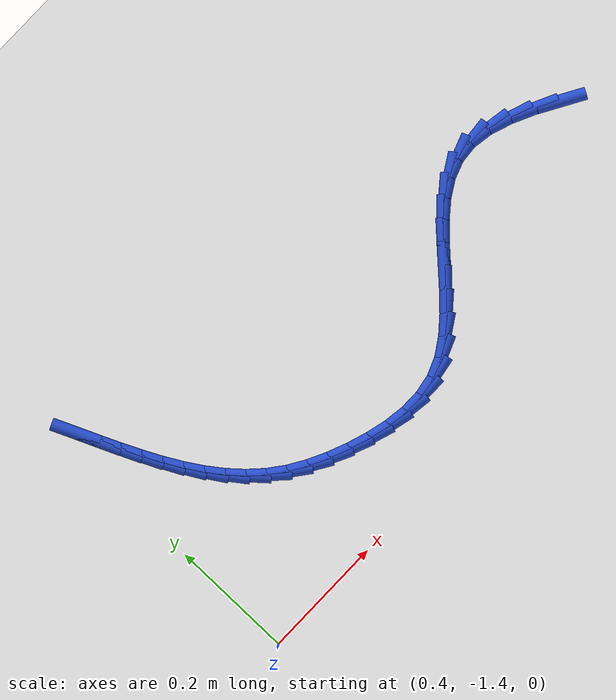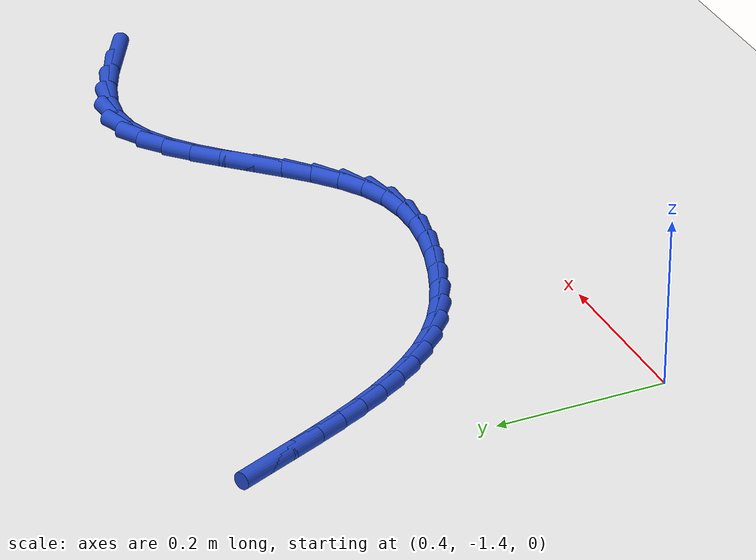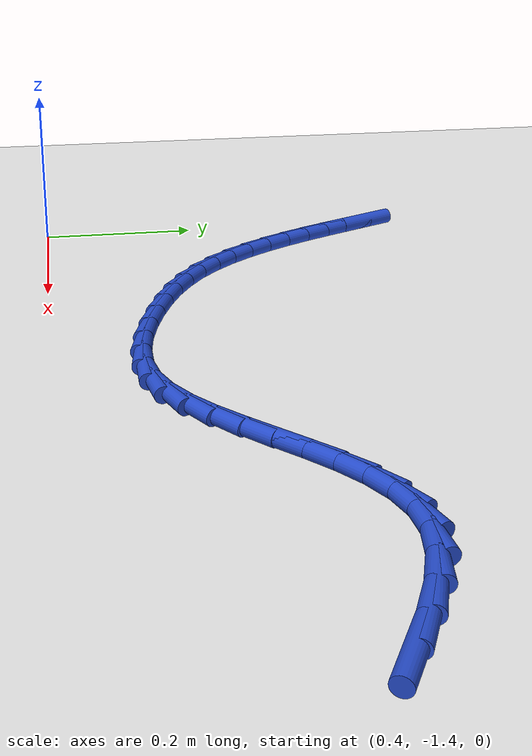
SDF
<sdf version="1.6">
 <world name="default">
  <model name="ground_plane">
   <static>1</static>
   <link name="link">
    <collision name="collision">
     <geometry><plane><normal>0 0 1</normal><size>100 100</size></plane></geometry>
     <surface><friction><ode><mu>100</mu><mu2>50</mu2></ode></friction></surface>
    </collision>
    <visual name="visual">
     <cast_shadows>0</cast_shadows>
     <geometry><plane><normal>0 0 1</normal><size>100 100</size></plane></geometry>
     <material>
      <script><uri>file://media/materials/scripts/gazebo.material</uri><name>Gazebo/WhiteGlow</name></script>
     </material>
    </visual>
   </link>
  </model>
  <model name="line">
   <link name="link_206">
    <pose>1.312610488485859 -1.1356522336562616 0.01 0 1.57 -0.5214419297256355</pose>
    <collision name="collision">
     <geometry><cylinder><radius>0.01</radius><length>0.08</length></cylinder></geometry>
    </collision>
    <visual name="visual">
     <material>
      <script><name>Gazebo/Blue</name><uri>file://media/materials/scripts/gazebo.material</uri></script>
     </material>
     <geometry><cylinder><radius>0.01</radius><length>0.08</length></cylinder></geometry>
    </visual>
   </link>
   <link name="link_207">
    <pose>1.2751437098567104 -1.1141283918461418 0.01 0 1.57 -0.44586204708426097</pose>
    <collision name="collision">
     <geometry><cylinder><radius>0.01</radius><length>0.08</length></cylinder></geometry>
    </collision>
    <visual name="visual">
     <material>
      <script><name>Gazebo/Blue</name><uri>file://media/materials/scripts/gazebo.material</uri></script>
     </material>
     <geometry><cylinder><radius>0.01</radius><length>0.08</length></cylinder></geometry>
    </visual>
   </link>
   <link name="link_208">
    <pose>1.2380448453261002 -1.0963965552823312 0.01 0 1.57 -0.3299150513413945</pose>
    <collision name="collision">
     <geometry><cylinder><radius>0.01</radius><length>0.08</length></cylinder></geometry>
    </collision>
    <visual name="visual">
     <material>
      <script><name>Gazebo/Blue</name><uri>file://media/materials/scripts/gazebo.material</uri></script>
     </material>
     <geometry><cylinder><radius>0.01</radius><length>0.08</length></cylinder></geometry>
    </visual>
   </link>
   <link name="link_209">
    <pose>1.2020038227370073 -1.0840550295326077 0.01 0 1.57 -0.15484270157330082</pose>
    <collision name="collision">
     <geometry><cylinder><radius>0.01</radius><length>0.08</length></cylinder></geometry>
    </collision>
    <visual name="visual">
     <material>
      <script><name>Gazebo/Blue</name><uri>file://media/materials/scripts/gazebo.material</uri></script>
     </material>
     <geometry><cylinder><radius>0.01</radius><length>0.08</length></cylinder></geometry>
    </visual>
   </link>
   <link name="link_210">
    <pose>1.1677105699324124 -1.0787021201647498 0.01 0 1.57 0.09338912920556194</pose>
    <collision name="collision">
     <geometry><cylinder><radius>0.01</radius><length>0.08</length></cylinder></geometry>
    </collision>
    <visual name="visual">
     <material>
      <script><name>Gazebo/Blue</name><uri>file://media/materials/scripts/gazebo.material</uri></script>
     </material>
     <geometry><cylinder><radius>0.01</radius><length>0.08</length></cylinder></geometry>
    </visual>
   </link>
   <link name="link_211">
    <pose>1.1357655340295618 -1.0816941426492908 0.01 0 1.57 0.3473778575573275</pose>
    <collision name="collision">
     <geometry><cylinder><radius>0.01</radius><length>0.08</length></cylinder></geometry>
    </collision>
    <visual name="visual">
     <material>
      <script><name>Gazebo/Blue</name><uri>file://media/materials/scripts/gazebo.material</uri></script>
     </material>
     <geometry><cylinder><radius>0.01</radius><length>0.08</length></cylinder></geometry>
    </visual>
   </link>
   <link name="link_212">
    <pose>1.1060533980286698 -1.0924517125966162 0.01 0 1.57 0.5470305865638446</pose>
    <collision name="collision">
     <geometry><cylinder><radius>0.01</radius><length>0.08</length></cylinder></geometry>
    </collision>
    <visual name="visual">
     <material>
      <script><name>Gazebo/Blue</name><uri>file://media/materials/scripts/gazebo.material</uri></script>
     </material>
     <geometry><cylinder><radius>0.01</radius><length>0.08</length></cylinder></geometry>
    </visual>
   </link>
   <link name="link_213">
    <pose>1.0781154208133723 -1.1094666954903547 0.01 0 1.57 0.6851562039002745</pose>
    <collision name="collision">
     <geometry><cylinder><radius>0.01</radius><length>0.08</length></cylinder></geometry>
    </collision>
    <visual name="visual">
     <material>
      <script><name>Gazebo/Blue</name><uri>file://media/materials/scripts/gazebo.material</uri></script>
     </material>
     <geometry><cylinder><radius>0.01</radius><length>0.08</length></cylinder></geometry>
    </visual>
   </link>
   <link name="link_214">
    <pose>1.0514906931043055 -1.1312250932723271 0.01 0 1.57 0.7699429372936958</pose>
    <collision name="collision">
     <geometry><cylinder><radius>0.01</radius><length>0.08</length></cylinder></geometry>
    </collision>
    <visual name="visual">
     <material>
      <script><name>Gazebo/Blue</name><uri>file://media/materials/scripts/gazebo.material</uri></script>
     </material>
     <geometry><cylinder><radius>0.01</radius><length>0.08</length></cylinder></geometry>
    </visual>
   </link>
   <link name="link_215">
    <pose>1.0257183056221024 -1.1562129078843553 0.01 0 1.57 0.8107800093157533</pose>
    <collision name="collision">
     <geometry><cylinder><radius>0.01</radius><length>0.08</length></cylinder></geometry>
    </collision>
    <visual name="visual">
     <material>
      <script><name>Gazebo/Blue</name><uri>file://media/materials/scripts/gazebo.material</uri></script>
     </material>
     <geometry><cylinder><radius>0.01</radius><length>0.08</length></cylinder></geometry>
    </visual>
   </link>
   <link name="link_216">
    <pose>1.000337349087396 -1.1829161412682614 0.01 0 1.57 0.8131671052693851</pose>
    <collision name="collision">
     <geometry><cylinder><radius>0.01</radius><length>0.08</length></cylinder></geometry>
    </collision>
    <visual name="visual">
     <material>
      <script><name>Gazebo/Blue</name><uri>file://media/materials/scripts/gazebo.material</uri></script>
     </material>
     <geometry><cylinder><radius>0.01</radius><length>0.08</length></cylinder></geometry>
    </visual>
   </link>
   <link name="link_217">
    <pose>0.9748869142208222 -1.2098207953658655 0.01 0 1.57 0.7778605153669991</pose>
    <collision name="collision">
     <geometry><cylinder><radius>0.01</radius><length>0.08</length></cylinder></geometry>
    </collision>
    <visual name="visual">
     <material>
      <script><name>Gazebo/Blue</name><uri>file://media/materials/scripts/gazebo.material</uri></script>
     </material>
     <geometry><cylinder><radius>0.01</radius><length>0.08</length></cylinder></geometry>
    </visual>
   </link>
   <link name="link_218">
    <pose>0.9489060917430129 -1.2354128721189908 0.01 0 1.57 0.7010227826621915</pose>
    <collision name="collision">
     <geometry><cylinder><radius>0.01</radius><length>0.08</length></cylinder></geometry>
    </collision>
    <visual name="visual">
     <material>
      <script><name>Gazebo/Blue</name><uri>file://media/materials/scripts/gazebo.material</uri></script>
     </material>
     <geometry><cylinder><radius>0.01</radius><length>0.08</length></cylinder></geometry>
    </visual>
   </link>
   <link name="link_219">
    <pose>0.9219339723746041 -1.2581783734694572 0.01 0 1.57 0.5751157399584299</pose>
    <collision name="collision">
     <geometry><cylinder><radius>0.01</radius><length>0.08</length></cylinder></geometry>
    </collision>
    <visual name="visual">
     <material>
      <script><name>Gazebo/Blue</name><uri>file://media/materials/scripts/gazebo.material</uri></script>
     </material>
     <geometry><cylinder><radius>0.01</radius><length>0.08</length></cylinder></geometry>
    </visual>
   </link>
   <link name="link_220">
    <pose>0.8935096468362278 -1.2766033013590876 0.01 0 1.57 0.3929244178770238</pose>
    <collision name="collision">
     <geometry><cylinder><radius>0.01</radius><length>0.08</length></cylinder></geometry>
    </collision>
    <visual name="visual">
     <material>
      <script><name>Gazebo/Blue</name><uri>file://media/materials/scripts/gazebo.material</uri></script>
     </material>
     <geometry><cylinder><radius>0.01</radius><length>0.08</length></cylinder></geometry>
    </visual>
   </link>
   <link name="link_221">
    <pose>0.8631736939601176 -1.2891768738390263 0.01 0 1.57 0.181009844982098</pose>
    <collision name="collision">
     <geometry><cylinder><radius>0.01</radius><length>0.08</length></cylinder></geometry>
    </collision>
    <visual name="visual">
     <material>
      <script><name>Gazebo/Blue</name><uri>file://media/materials/scripts/gazebo.material</uri></script>
     </material>
     <geometry><cylinder><radius>0.01</radius><length>0.08</length></cylinder></geometry>
    </visual>
   </link>
   <link name="link_222">
    <pose>0.8307970255822845 -1.2951022252118012 0.01 0 1.57 0.002637906916039503</pose>
    <collision name="collision">
     <geometry><cylinder><radius>0.01</radius><length>0.08</length></cylinder></geometry>
    </collision>
    <visual name="visual">
     <material>
      <script><name>Gazebo/Blue</name><uri>file://media/materials/scripts/gazebo.material</uri></script>
     </material>
     <geometry><cylinder><radius>0.01</radius><length>0.08</length></cylinder></geometry>
    </visual>
   </link>
   <link name="link_223">
    <pose>0.7969950015128276 -1.2951913920116942 0.01 0 1.57 -0.13577942505212562</pose>
    <collision name="collision">
     <geometry><cylinder><radius>0.01</radius><length>0.08</length></cylinder></geometry>
    </collision>
    <visual name="visual">
     <material>
      <script><name>Gazebo/Blue</name><uri>file://media/materials/scripts/gazebo.material</uri></script>
     </material>
     <geometry><cylinder><radius>0.01</radius><length>0.08</length></cylinder></geometry>
    </visual>
   </link>
   <link name="link_224">
    <pose>0.7624848721409728 -1.2904766168664517 0.01 0 1.57 -0.24118944735670061</pose>
    <collision name="collision">
     <geometry><cylinder><radius>0.01</radius><length>0.08</length></cylinder></geometry>
    </collision>
    <visual name="visual">
     <material>
      <script><name>Gazebo/Blue</name><uri>file://media/materials/scripts/gazebo.material</uri></script>
     </material>
     <geometry><cylinder><radius>0.01</radius><length>0.08</length></cylinder></geometry>
    </visual>
   </link>
   <link name="link_225">
    <pose>0.727983887855952 -1.281990142403821 0.01 0 1.57 -0.32089053139916346</pose>
    <collision name="collision">
     <geometry><cylinder><radius>0.01</radius><length>0.08</length></cylinder></geometry>
    </collision>
    <visual name="visual">
     <material>
      <script><name>Gazebo/Blue</name><uri>file://media/materials/scripts/gazebo.material</uri></script>
     </material>
     <geometry><cylinder><radius>0.01</radius><length>0.08</length></cylinder></geometry>
    </visual>
   </link>
   <link name="link_226">
    <pose>0.6942092990469921 -1.2707642112515483 0.01 0 1.57 -0.38513960689437315</pose>
    <collision name="collision">
     <geometry><cylinder><radius>0.01</radius><length>0.08</length></cylinder></geometry>
    </collision>
    <visual name="visual">
     <material>
      <script><name>Gazebo/Blue</name><uri>file://media/materials/scripts/gazebo.material</uri></script>
     </material>
     <geometry><cylinder><radius>0.01</radius><length>0.08</length></cylinder></geometry>
    </visual>
   </link>
   <link name="link_227">
    <pose>0.6618249073225019 -1.2576360787239318 0.01 0 1.57 -0.4582410459168996</pose>
    <collision name="collision">
     <geometry><cylinder><radius>0.01</radius><length>0.08</length></cylinder></geometry>
    </collision>
    <visual name="visual">
     <material>
      <script><name>Gazebo/Blue</name><uri>file://media/materials/scripts/gazebo.material</uri></script>
     </material>
     <geometry><cylinder><radius>0.01</radius><length>0.08</length></cylinder></geometry>
    </visual>
   </link>
   <link name="link_228">
    <pose>0.6312511783829242 -1.2425552826937722 0.01 0 1.57 -0.5478736271975913</pose>
    <collision name="collision">
     <geometry><cylinder><radius>0.01</radius><length>0.08</length></cylinder></geometry>
    </collision>
    <visual name="visual">
     <material>
      <script><name>Gazebo/Blue</name><uri>file://media/materials/scripts/gazebo.material</uri></script>
     </material>
     <geometry><cylinder><radius>0.01</radius><length>0.08</length></cylinder></geometry>
    </visual>
   </link>
   <link name="link_229">
    <pose>0.6028393660026369 -1.225218867949565 0.01 0 1.57 -0.6539293852871947</pose>
    <collision name="collision">
     <geometry><cylinder><radius>0.01</radius><length>0.08</length></cylinder></geometry>
    </collision>
    <visual name="visual">
     <material>
      <script><name>Gazebo/Blue</name><uri>file://media/materials/scripts/gazebo.material</uri></script>
     </material>
     <geometry><cylinder><radius>0.01</radius><length>0.08</length></cylinder></geometry>
    </visual>
   </link>
   <link name="link_230">
    <pose>0.5769134124859562 -1.2053486149967965 0.01 0 1.57 -0.7611470027236168</pose>
    <collision name="collision">
     <geometry><cylinder><radius>0.01</radius><length>0.08</length></cylinder></geometry>
    </collision>
    <visual name="visual">
     <material>
      <script><name>Gazebo/Blue</name><uri>file://media/materials/scripts/gazebo.material</uri></script>
     </material>
     <geometry><cylinder><radius>0.01</radius><length>0.08</length></cylinder></geometry>
    </visual>
   </link>
   <link name="link_231">
    <pose>0.5534417149422319 -1.1829886074411953 0.01 0 1.57 -0.8568172289694544</pose>
    <collision name="collision">
     <geometry><cylinder><radius>0.01</radius><length>0.08</length></cylinder></geometry>
    </collision>
    <visual name="visual">
     <material>
      <script><name>Gazebo/Blue</name><uri>file://media/materials/scripts/gazebo.material</uri></script>
     </material>
     <geometry><cylinder><radius>0.01</radius><length>0.08</length></cylinder></geometry>
    </visual>
   </link>
   <link name="link_232">
    <pose>0.5321437916469334 -1.1584085385181064 0.01 0 1.57 -0.9390902242408523</pose>
    <collision name="collision">
     <geometry><cylinder><radius>0.01</radius><length>0.08</length></cylinder></geometry>
    </collision>
    <visual name="visual">
     <material>
      <script><name>Gazebo/Blue</name><uri>file://media/materials/scripts/gazebo.material</uri></script>
     </material>
     <geometry><cylinder><radius>0.01</radius><length>0.08</length></cylinder></geometry>
    </visual>
   </link>
   <link name="link_233">
    <pose>0.5127340420393331 -1.1318827417077655 0.01 0 1.57 -1.007520017488536</pose>
    <collision name="collision">
     <geometry><cylinder><radius>0.01</radius><length>0.08</length></cylinder></geometry>
    </collision>
    <visual name="visual">
     <material>
      <script><name>Gazebo/Blue</name><uri>file://media/materials/scripts/gazebo.material</uri></script>
     </material>
     <geometry><cylinder><radius>0.01</radius><length>0.08</length></cylinder></geometry>
    </visual>
   </link>
   <link name="link_234">
    <pose>0.4949268655587066 -1.1036855504904084 0.01 0 1.57 -1.0624347055084644</pose>
    <collision name="collision">
     <geometry><cylinder><radius>0.01</radius><length>0.08</length></cylinder></geometry>
    </collision>
    <visual name="visual">
     <material>
      <script><name>Gazebo/Blue</name><uri>file://media/materials/scripts/gazebo.material</uri></script>
     </material>
     <geometry><cylinder><radius>0.01</radius><length>0.08</length></cylinder></geometry>
    </visual>
   </link>
   <link name="link_235">
    <pose>0.4784366616443272 -1.0740912983462707 0.01 0 1.57 -1.1045388012008301</pose>
    <collision name="collision">
     <geometry><cylinder><radius>0.01</radius><length>0.08</length></cylinder></geometry>
    </collision>
    <visual name="visual">
     <material>
      <script><name>Gazebo/Blue</name><uri>file://media/materials/scripts/gazebo.material</uri></script>
     </material>
     <geometry><cylinder><radius>0.01</radius><length>0.08</length></cylinder></geometry>
    </visual>
   </link>
   <link name="link_236">
    <pose>0.46297782973546886 -1.0433743187555873 0.01 0 1.57 -1.1346231489751963</pose>
    <collision name="collision">
     <geometry><cylinder><radius>0.01</radius><length>0.08</length></cylinder></geometry>
    </collision>
    <visual name="visual">
     <material>
      <script><name>Gazebo/Blue</name><uri>file://media/materials/scripts/gazebo.material</uri></script>
     </material>
     <geometry><cylinder><radius>0.01</radius><length>0.08</length></cylinder></geometry>
    </visual>
   </link>
   <link name="link_237">
    <pose>0.4482647692714067 -1.0118089451985954 0.01 0 1.57 -1.1533856188593303</pose>
    <collision name="collision">
     <geometry><cylinder><radius>0.01</radius><length>0.08</length></cylinder></geometry>
    </collision>
    <visual name="visual">
     <material>
      <script><name>Gazebo/Blue</name><uri>file://media/materials/scripts/gazebo.material</uri></script>
     </material>
     <geometry><cylinder><radius>0.01</radius><length>0.08</length></cylinder></geometry>
    </visual>
   </link>
   <link name="link_238">
    <pose>0.4340118796914135 -0.979669511155529 0.01 0 1.57 -1.1613345384199938</pose>
    <collision name="collision">
     <geometry><cylinder><radius>0.01</radius><length>0.08</length></cylinder></geometry>
    </collision>
    <visual name="visual">
     <material>
      <script><name>Gazebo/Blue</name><uri>file://media/materials/scripts/gazebo.material</uri></script>
     </material>
     <geometry><cylinder><radius>0.01</radius><length>0.08</length></cylinder></geometry>
    </visual>
   </link>
   <link name="link_239">
    <pose>0.41993356043476493 -0.9472303501066263 0.01 0 1.57 -1.1587451371064073</pose>
    <collision name="collision">
     <geometry><cylinder><radius>0.01</radius><length>0.08</length></cylinder></geometry>
    </collision>
    <visual name="visual">
     <material>
      <script><name>Gazebo/Blue</name><uri>file://media/materials/scripts/gazebo.material</uri></script>
     </material>
     <geometry><cylinder><radius>0.01</radius><length>0.08</length></cylinder></geometry>
    </visual>
   </link>
  </model>
 </world>
</sdf>
